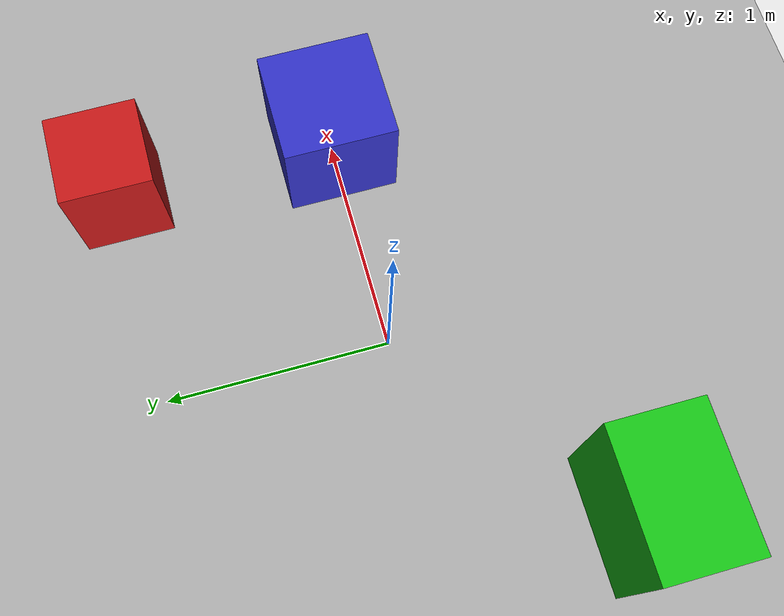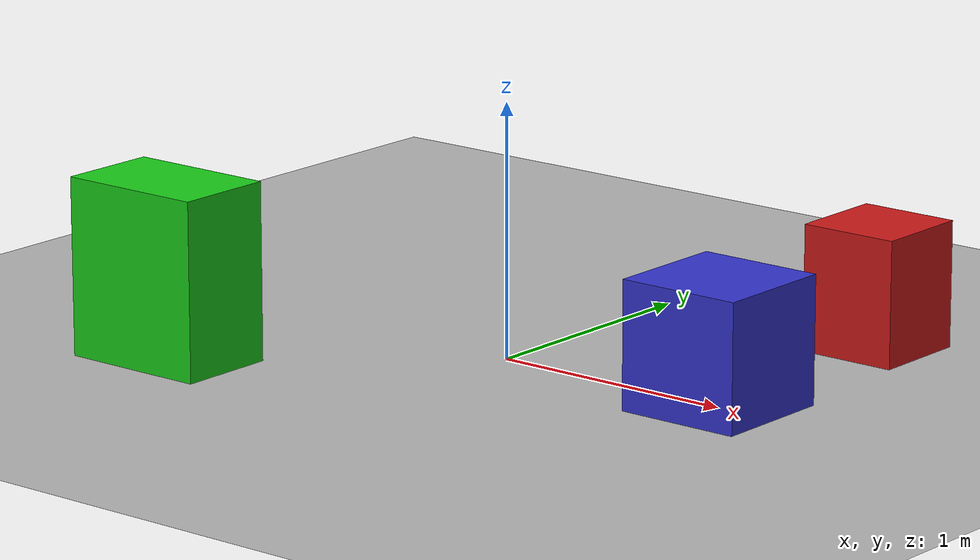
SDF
<?xml version="1.0" ?>
<sdf version="1.9">

  <world name="rgbd_test_world">

    <!-- Physics -->
    <plugin
      filename="gz-sim-physics-system"
      name="gz::sim::systems::Physics">
    </plugin>

    <!-- User Commands -->
    <plugin
      filename="gz-sim-user-commands-system"
      name="gz::sim::systems::UserCommands">
    </plugin>

    <!-- Scene Broadcaster -->
    <plugin
      filename="gz-sim-scene-broadcaster-system"
      name="gz::sim::systems::SceneBroadcaster">
    </plugin>

    <!-- Sensors -->
    <plugin
      filename="gz-sim-sensors-system"
      name="gz::sim::systems::Sensors">
      <render_engine>ogre2</render_engine>
    </plugin>

    <!-- Physics settings -->
    <physics name="1ms" type="ignored">
      <max_step_size>0.001</max_step_size>
      <real_time_factor>1.0</real_time_factor>
      <real_time_update_rate>1000</real_time_update_rate>
    </physics>

    <!-- Sun -->
    <light name="sun" type="directional">
      <cast_shadows>true</cast_shadows>
      <pose>0 0 10 0 0 0</pose>
      <diffuse>0.8 0.8 0.8 1</diffuse>
      <specular>0.2 0.2 0.2 1</specular>
      <direction>-0.5 0.5 -1</direction>
    </light>

    <!-- Ground -->
    <model name="ground_plane">
      <static>true</static>

      <link name="link">

        <collision name="collision">
          <geometry>
            <plane>
              <normal>0 0 1</normal>
              <size>20 20</size>
            </plane>
          </geometry>
        </collision>

        <visual name="visual">
          <geometry>
            <plane>
              <normal>0 0 1</normal>
              <size>20 20</size>
            </plane>
          </geometry>

          <material>
            <ambient>0.7 0.7 0.7 1</ambient>
            <diffuse>0.7 0.7 0.7 1</diffuse>
          </material>
        </visual>

      </link>
    </model>

    <!-- Test obstacle -->
    <model name="test_box">
      <static>true</static>

      <pose>1.0 0 0.25 0 0 0</pose>

      <link name="link">

        <collision name="collision">
          <geometry>
            <box>
              <size>0.5 0.5 0.5</size>
            </box>
          </geometry>
        </collision>

        <visual name="visual">
          <geometry>
            <box>
              <size>0.5 0.5 0.5</size>
            </box>
          </geometry>

          <material>
            <ambient>0.2 0.2 0.8 1</ambient>
            <diffuse>0.2 0.2 0.8 1</diffuse>
          </material>
        </visual>

      </link>
    </model>

        <model name="red_obstacle">
      <static>true</static>
      <pose>1.0 1.0 0.25 0 0 0</pose>

      <link name="link">
        <collision name="collision">
          <geometry>
            <box>
              <size>0.4 0.4 0.5</size>
            </box>
          </geometry>
        </collision>

        <visual name="visual">
          <geometry>
            <box>
              <size>0.4 0.4 0.5</size>
            </box>
          </geometry>

          <material>
            <ambient>0.8 0.1 0.1 1</ambient>
            <diffuse>0.8 0.1 0.1 1</diffuse>
          </material>
        </visual>
      </link>
    </model>

    <model name="green_obstacle">
      <static>true</static>
      <pose>-1.0 -0.8 0.35 0 0 0</pose>

      <link name="link">
        <collision name="collision">
          <geometry>
            <box>
              <size>0.6 0.4 0.7</size>
            </box>
          </geometry>
        </collision>

        <visual name="visual">
          <geometry>
            <box>
              <size>0.6 0.4 0.7</size>
            </box>
          </geometry>

          <material>
            <ambient>0.1 0.8 0.1 1</ambient>
            <diffuse>0.1 0.8 0.1 1</diffuse>
          </material>
        </visual>
      </link>
    </model>
  </world>

</sdf>
